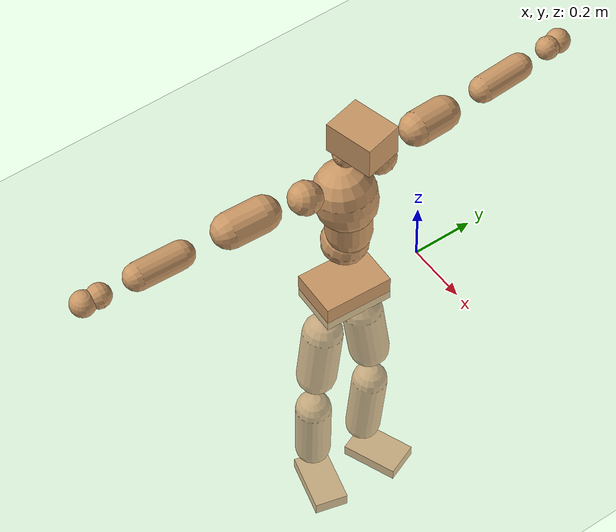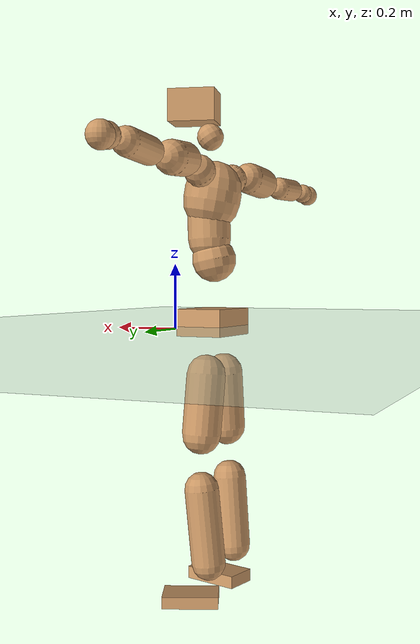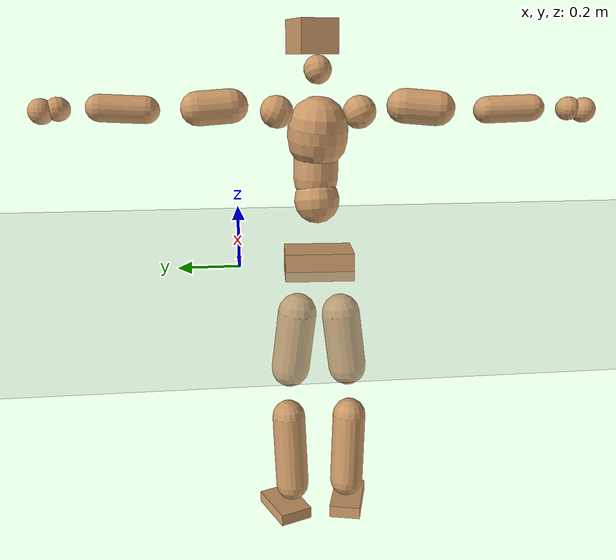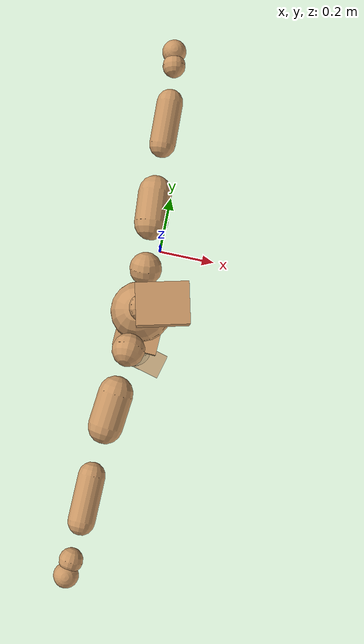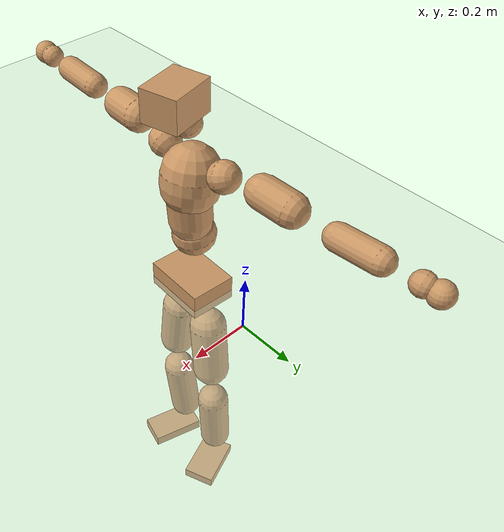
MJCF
<mujoco model="humanoid">
  <compiler coordinate="local" angle="radian"/>
  <default>
    <joint damping="0.0" armature="0.01" stiffness="0.0" limited="true"/>
    <geom conaffinity="1" condim="3" contype="7" margin="0.001" rgba="0.8 0.6 .4 1"/>
  </default>
  <asset>
    <texture type="skybox" builtin="gradient" rgb1=".4 .5 .6" rgb2="0 0 0" width="100" height="100"/>
    <texture builtin="flat" height="1278" mark="cross" markrgb="1 1 1" name="texgeom" random="0.01" rgb1="0.8 0.6 0.4" rgb2="0.8 0.6 0.4" type="cube" width="127"/>
    <texture builtin="checker" height="100" name="texplane" rgb1="0 0 0" rgb2="0.8 0.8 0.8" type="2d" width="100"/>
    <material name="MatPlane" reflectance="0.5" shininess="1" specular="1" texrepeat="60 60" texture="texplane"/>
    <material name="geom" texture="texgeom" texuniform="true"/>
  </asset>
  <worldbody>
    <light cutoff="100" diffuse="1 1 1" dir="-0 0 -1.3" directional="true" exponent="1" pos="0 0 1.3" specular=".1 .1 .1"/>
    <geom conaffinity="1" condim="3" name="floor" pos="0 0 0" rgba="0.8 0.9 0.8 1" size="100 100 .2" type="plane" material="MatPlane"/>
    <body name="Pelvis" pos="-0.0006 -0.2595 0.0194">
      <freejoint name="Pelvis"/>
      <geom type="box" contype="1" conaffinity="1" density="5359.375514" pos="-0.0135 0.0006 -0.0086" size="0.0797 0.1116 0.045" quat="0.9997 0.0000 0.0000 -0.0225" name="Pelvis"/>
      <body name="L_Hip" pos="-0.0233 0.062 -0.085">
        <joint name="L_Hip_x" type="hinge" pos="0 0 0" axis="1 0 0" stiffness="1600" damping="160" armature="0.02" range="-180.0000 180.0000"/>
        <joint name="L_Hip_y" type="hinge" pos="0 0 0" axis="0 1 0" stiffness="1600" damping="160" armature="0.02" range="-180.0000 180.0000"/>
        <joint name="L_Hip_z" type="hinge" pos="0 0 0" axis="0 0 1" stiffness="1600" damping="160" armature="0.02" range="-180.0000 180.0000"/>
        <geom type="capsule" contype="1" conaffinity="1" density="2040.816327" size="0.0643" fromto="0.0031 0.0114 -0.0936 0.0097 0.0359 -0.2945" name="L_Hip"/>
        <body name="L_Knee" pos="0.0128 0.0474 -0.388">
          <joint name="L_Knee_x" type="hinge" pos="0 0 0" axis="1 0 0" stiffness="1600" damping="160" armature="0.02" range="-180.0000 180.0000"/>
          <joint name="L_Knee_y" type="hinge" pos="0 0 0" axis="0 1 0" stiffness="1600" damping="160" armature="0.02" range="-180.0000 180.0000"/>
          <joint name="L_Knee_z" type="hinge" pos="0 0 0" axis="0 0 1" stiffness="1600" damping="160" armature="0.02" range="-180.0000 180.0000"/>
          <geom type="capsule" contype="1" conaffinity="1" density="1234.567901" size="0.0566" fromto="-0.0073 -0.0030 -0.0862 -0.0284 -0.0116 -0.3372" name="L_Knee"/>
          <body name="L_Ankle" pos="-0.0356 -0.0145 -0.4235">
            <joint name="L_Ankle_x" type="hinge" pos="0 0 0" axis="1 0 0" stiffness="1600" damping="160" armature="0.02" range="-180.0000 180.0000"/>
            <joint name="L_Ankle_y" type="hinge" pos="0 0 0" axis="0 1 0" stiffness="1600" damping="160" armature="0.02" range="-180.0000 180.0000"/>
            <joint name="L_Ankle_z" type="hinge" pos="0 0 0" axis="0 0 1" stiffness="1600" damping="160" armature="0.02" range="-180.0000 180.0000"/>
            <geom type="box" contype="1" conaffinity="1" density="999.999962" pos="0.0629 0.0250 -0.0315" size="0.0927 0.0575 0.02" quat="0.9822 0.0000 0.0000 0.1880" name="L_Ankle"/>
            <body name="L_Toe" pos="0.1257 0.05 -0.063">
              <joint name="L_Toe_x" type="hinge" pos="0 0 0" axis="1 0 0" stiffness="1000" damping="100" armature="0.02" range="-180.0000 180.0000"/>
              <joint name="L_Toe_y" type="hinge" pos="0 0 0" axis="0 1 0" stiffness="1000" damping="100" armature="0.02" range="-180.0000 180.0000"/>
              <joint name="L_Toe_z" type="hinge" pos="0 0 0" axis="0 0 1" stiffness="1000" damping="100" armature="0.02" range="-180.0000 180.0000"/>
              <geom type="box" contype="1" conaffinity="1" density="7866032.620227" pos="0.0000 0.0000 0.0318" size="0.0011 0.0027 0.001" quat="0.9814 0.0000 0.0000 0.1920" name="L_Toe"/>
            </body>
          </body>
        </body>
      </body>
      <body name="R_Hip" pos="-0.0215 -0.062 -0.0916">
        <joint name="R_Hip_x" type="hinge" pos="0 0 0" axis="1 0 0" stiffness="1600" damping="160" armature="0.02" range="-180.0000 180.0000"/>
        <joint name="R_Hip_y" type="hinge" pos="0 0 0" axis="0 1 0" stiffness="1600" damping="160" armature="0.02" range="-180.0000 180.0000"/>
        <joint name="R_Hip_z" type="hinge" pos="0 0 0" axis="0 0 1" stiffness="1600" damping="160" armature="0.02" range="-180.0000 180.0000"/>
        <geom type="capsule" contype="1" conaffinity="1" density="2040.816327" size="0.0636" fromto="-0.0003 -0.0114 -0.0929 -0.0008 -0.0351 -0.2872" name="R_Hip"/>
        <body name="R_Knee" pos="-0.001 -0.0464 -0.3801">
          <joint name="R_Knee_x" type="hinge" pos="0 0 0" axis="1 0 0" stiffness="1600" damping="160" armature="0.02" range="-180.0000 180.0000"/>
          <joint name="R_Knee_y" type="hinge" pos="0 0 0" axis="0 1 0" stiffness="1600" damping="160" armature="0.02" range="-180.0000 180.0000"/>
          <joint name="R_Knee_z" type="hinge" pos="0 0 0" axis="0 0 1" stiffness="1600" damping="160" armature="0.02" range="-180.0000 180.0000"/>
          <geom type="capsule" contype="1" conaffinity="1" density="1234.567901" size="0.0572" fromto="-0.0073 0.0039 -0.0868 -0.0276 0.0147 -0.3269" name="R_Knee"/>
          <body name="R_Ankle" pos="-0.0349 0.0187 -0.4137">
            <joint name="R_Ankle_x" type="hinge" pos="0 0 0" axis="1 0 0" stiffness="1600" damping="160" armature="0.02" range="-180.0000 180.0000"/>
            <joint name="R_Ankle_y" type="hinge" pos="0 0 0" axis="0 1 0" stiffness="1600" damping="160" armature="0.02" range="-180.0000 180.0000"/>
            <joint name="R_Ankle_z" type="hinge" pos="0 0 0" axis="0 0 1" stiffness="1600" damping="160" armature="0.02" range="-180.0000 180.0000"/>
            <geom type="box" contype="1" conaffinity="1" density="999.99998" pos="0.0690 -0.0179 -0.0305" size="0.0973 0.0541 0.0213" quat="0.9920 0.0000 0.0000 -0.1264" name="R_Ankle"/>
            <body name="R_Toe" pos="0.1379 -0.0357 -0.0609">
              <joint name="R_Toe_x" type="hinge" pos="0 0 0" axis="1 0 0" stiffness="1000" damping="100" armature="0.02" range="-180.0000 180.0000"/>
              <joint name="R_Toe_y" type="hinge" pos="0 0 0" axis="0 1 0" stiffness="1000" damping="100" armature="0.02" range="-180.0000 180.0000"/>
              <joint name="R_Toe_z" type="hinge" pos="0 0 0" axis="0 0 1" stiffness="1000" damping="100" armature="0.02" range="-180.0000 180.0000"/>
              <geom type="box" contype="1" conaffinity="1" density="8275026.69955" pos="0.0000 0.0000 0.0325" size="0.001 0.0026 0.0012" quat="0.9930 0.0000 0.0000 -0.1180" name="R_Toe"/>
            </body>
          </body>
        </body>
      </body>
      <body name="Torso" pos="-0.0359 0.0037 0.1249">
        <joint name="Torso_x" type="hinge" pos="0 0 0" axis="1 0 0" stiffness="2000" damping="200" armature="0.02" range="-180.0000 180.0000"/>
        <joint name="Torso_y" type="hinge" pos="0 0 0" axis="0 1 0" stiffness="2000" damping="200" armature="0.02" range="-180.0000 180.0000"/>
        <joint name="Torso_z" type="hinge" pos="0 0 0" axis="0 0 1" stiffness="2000" damping="200" armature="0.02" range="-180.0000 180.0000"/>
        <geom type="capsule" contype="1" conaffinity="1" density="2040.816327" size="0.0734" fromto="0.0158 0.0023 0.0740 0.0162 0.0024 0.0760" name="Torso"/>
        <body name="Spine" pos="0.0319 0.0047 0.15">
          <joint name="Spine_x" type="hinge" pos="0 0 0" axis="1 0 0" stiffness="2000" damping="200" armature="0.02" range="-180.0000 180.0000"/>
          <joint name="Spine_y" type="hinge" pos="0 0 0" axis="0 1 0" stiffness="2000" damping="200" armature="0.02" range="-180.0000 180.0000"/>
          <joint name="Spine_z" type="hinge" pos="0 0 0" axis="0 0 1" stiffness="2000" damping="200" armature="0.02" range="-180.0000 180.0000"/>
          <geom type="capsule" contype="1" conaffinity="1" density="2040.816327" size="0.0715" fromto="0.0034 -0.0029 0.0714 -0.0004 0.0004 -0.0091" name="Spine"/>
          <body name="Chest" pos="0.003 -0.0025 0.0623">
            <joint name="Chest_x" type="hinge" pos="0 0 0" axis="1 0 0" stiffness="2000" damping="200" armature="0.02" range="-180.0000 180.0000"/>
            <joint name="Chest_y" type="hinge" pos="0 0 0" axis="0 1 0" stiffness="2000" damping="200" armature="0.02" range="-180.0000 180.0000"/>
            <joint name="Chest_z" type="hinge" pos="0 0 0" axis="0 0 1" stiffness="2000" damping="200" armature="0.02" range="-180.0000 180.0000"/>
            <geom type="capsule" contype="1" conaffinity="1" density="2040.816327" size="0.0958" fromto="-0.0152 -0.0044 0.0945 -0.0090 -0.0026 0.0564" name="Chest"/>
            <body name="Neck" pos="-0.03 -0.0101 0.2202">
              <joint name="Neck_x" type="hinge" pos="0 0 0" axis="1 0 0" stiffness="1000" damping="100" armature="0.02" range="-180.0000 180.0000"/>
              <joint name="Neck_y" type="hinge" pos="0 0 0" axis="0 1 0" stiffness="1000" damping="100" armature="0.02" range="-180.0000 180.0000"/>
              <joint name="Neck_z" type="hinge" pos="0 0 0" axis="0 0 1" stiffness="1000" damping="100" armature="0.02" range="-180.0000 180.0000"/>
              <geom type="capsule" contype="1" conaffinity="1" density="1000" size="0.0438" fromto="0.0255 0.0053 0.0480 0.0265 0.0055 0.0497" name="Neck"/>
              <body name="Head" pos="0.052 0.0109 0.0977">
                <joint name="Head_x" type="hinge" pos="0 0 0" axis="1 0 0" stiffness="1000" damping="100" armature="0.02" range="-180.0000 180.0000"/>
                <joint name="Head_y" type="hinge" pos="0 0 0" axis="0 1 0" stiffness="1000" damping="100" armature="0.02" range="-180.0000 180.0000"/>
                <joint name="Head_z" type="hinge" pos="0 0 0" axis="0 0 1" stiffness="1000" damping="100" armature="0.02" range="-180.0000 180.0000"/>
                <geom type="box" contype="1" conaffinity="1" density="2249.999924" pos="0.0270 0.0064 0.0498" size="0.078 0.0616 0.0529" quat="0.9932 0.0000 0.0000 0.1168" name="Head"/>
              </body>
            </body>
            <body name="L_Thorax" pos="-0.0185 0.0674 0.1178">
              <joint name="L_Thorax_x" type="hinge" pos="0 0 0" axis="1 0 0" stiffness="1000" damping="100" armature="0.02" range="-180.0000 180.0000"/>
              <joint name="L_Thorax_y" type="hinge" pos="0 0 0" axis="0 1 0" stiffness="1000" damping="100" armature="0.02" range="-180.0000 180.0000"/>
              <joint name="L_Thorax_z" type="hinge" pos="0 0 0" axis="0 0 1" stiffness="1000" damping="100" armature="0.02" range="-180.0000 180.0000"/>
              <geom type="capsule" contype="1" conaffinity="1" density="1000" size="0.0511" fromto="-0.0059 0.0574 0.0245 -0.0061 0.0592 0.0253" name="L_Thorax"/>
              <body name="L_Shoulder" pos="-0.012 0.1166 0.0498">
                <joint name="L_Shoulder_x" type="hinge" pos="0 0 0" axis="1 0 0" stiffness="1000" damping="100" armature="0.02" range="-720.0000 720.0000"/>
                <joint name="L_Shoulder_y" type="hinge" pos="0 0 0" axis="0 1 0" stiffness="1000" damping="100" armature="0.02" range="-720.0000 720.0000"/>
                <joint name="L_Shoulder_z" type="hinge" pos="0 0 0" axis="0 0 1" stiffness="1000" damping="100" armature="0.02" range="-720.0000 720.0000"/>
                <geom type="capsule" contype="1" conaffinity="1" density="1000" size="0.0529" fromto="-0.0061 0.0825 -0.0057 -0.0136 0.1827 -0.0126" name="L_Shoulder"/>
                <body name="L_Elbow" pos="-0.0197 0.2651 -0.0183">
                  <joint name="L_Elbow_x" type="hinge" pos="0 0 0" axis="1 0 0" stiffness="1000" damping="100" armature="0.02" range="-720.0000 720.0000"/>
                  <joint name="L_Elbow_y" type="hinge" pos="0 0 0" axis="0 1 0" stiffness="1000" damping="100" armature="0.02" range="-720.0000 720.0000"/>
                  <joint name="L_Elbow_z" type="hinge" pos="0 0 0" axis="0 0 1" stiffness="1000" damping="100" armature="0.02" range="-720.0000 720.0000"/>
                  <geom type="capsule" contype="1" conaffinity="1" density="1000" size="0.0413" fromto="-0.0019 0.0712 0.0036 -0.0056 0.2073 0.0105" name="L_Elbow"/>
                  <body name="L_Wrist" pos="-0.0076 0.2785 0.0141">
                    <joint name="L_Wrist_x" type="hinge" pos="0 0 0" axis="1 0 0" stiffness="600" damping="60" armature="0.02" range="-180.0000 180.0000"/>
                    <joint name="L_Wrist_y" type="hinge" pos="0 0 0" axis="0 1 0" stiffness="600" damping="60" armature="0.02" range="-180.0000 180.0000"/>
                    <joint name="L_Wrist_z" type="hinge" pos="0 0 0" axis="0 0 1" stiffness="600" damping="60" armature="0.02" range="-180.0000 180.0000"/>
                    <geom type="capsule" contype="1" conaffinity="1" density="1000" size="0.0361" fromto="-0.0084 0.0457 -0.0056 -0.0088 0.0477 -0.0058" name="L_Wrist"/>
                    <body name="L_Hand" pos="-0.0172 0.0934 -0.0114">
                      <joint name="L_Hand_x" type="hinge" pos="0 0 0" axis="1 0 0" stiffness="600" damping="60" armature="0.02" range="-180.0000 180.0000"/>
                      <joint name="L_Hand_y" type="hinge" pos="0 0 0" axis="0 1 0" stiffness="600" damping="60" armature="0.02" range="-180.0000 180.0000"/>
                      <joint name="L_Hand_z" type="hinge" pos="0 0 0" axis="0 0 1" stiffness="600" damping="60" armature="0.02" range="-180.0000 180.0000"/>
                      <geom type="sphere" contype="1" conaffinity="1" density="1000" size="0.0381" pos="0.0000 0.0000 0.0000" name="L_Hand"/>
                    </body>
                  </body>
                </body>
              </body>
            </body>
            <body name="R_Thorax" pos="-0.0241 -0.0784 0.1147">
              <joint name="R_Thorax_x" type="hinge" pos="0 0 0" axis="1 0 0" stiffness="1000" damping="100" armature="0.02" range="-180.0000 180.0000"/>
              <joint name="R_Thorax_y" type="hinge" pos="0 0 0" axis="0 1 0" stiffness="1000" damping="100" armature="0.02" range="-180.0000 180.0000"/>
              <joint name="R_Thorax_z" type="hinge" pos="0 0 0" axis="0 0 1" stiffness="1000" damping="100" armature="0.02" range="-180.0000 180.0000"/>
              <geom type="capsule" contype="1" conaffinity="1" density="1000" size="0.0522" fromto="-0.0016 -0.0549 0.0252 -0.0017 -0.0567 0.0260" name="R_Thorax"/>
              <body name="R_Shoulder" pos="-0.0033 -0.1117 0.0512">
                <joint name="R_Shoulder_x" type="hinge" pos="0 0 0" axis="1 0 0" stiffness="1000" damping="100" armature="0.02" range="-720.0000 720.0000"/>
                <joint name="R_Shoulder_y" type="hinge" pos="0 0 0" axis="0 1 0" stiffness="1000" damping="100" armature="0.02" range="-720.0000 720.0000"/>
                <joint name="R_Shoulder_z" type="hinge" pos="0 0 0" axis="0 0 1" stiffness="1000" damping="100" armature="0.02" range="-720.0000 720.0000"/>
                <geom type="capsule" contype="1" conaffinity="1" density="1000" size="0.0548" fromto="-0.0088 -0.0840 -0.0068 -0.0200 -0.1899 -0.0154" name="R_Shoulder"/>
                <body name="R_Elbow" pos="-0.0288 -0.2739 -0.0222">
                  <joint name="R_Elbow_x" type="hinge" pos="0 0 0" axis="1 0 0" stiffness="1000" damping="100" armature="0.02" range="-720.0000 720.0000"/>
                  <joint name="R_Elbow_y" type="hinge" pos="0 0 0" axis="0 1 0" stiffness="1000" damping="100" armature="0.02" range="-720.0000 720.0000"/>
                  <joint name="R_Elbow_z" type="hinge" pos="0 0 0" axis="0 0 1" stiffness="1000" damping="100" armature="0.02" range="-720.0000 720.0000"/>
                  <geom type="capsule" contype="1" conaffinity="1" density="1000" size="0.0422" fromto="-0.0013 -0.0721 0.0025 -0.0038 -0.2147 0.0074" name="R_Elbow"/>
                  <body name="R_Wrist" pos="-0.0051 -0.2868 0.01">
                    <joint name="R_Wrist_x" type="hinge" pos="0 0 0" axis="1 0 0" stiffness="600" damping="60" armature="0.02" range="-180.0000 180.0000"/>
                    <joint name="R_Wrist_y" type="hinge" pos="0 0 0" axis="0 1 0" stiffness="600" damping="60" armature="0.02" range="-180.0000 180.0000"/>
                    <joint name="R_Wrist_z" type="hinge" pos="0 0 0" axis="0 0 1" stiffness="600" damping="60" armature="0.02" range="-180.0000 180.0000"/>
                    <geom type="capsule" contype="1" conaffinity="1" density="1000" size="0.0373" fromto="-0.0056 -0.0475 -0.0046 -0.0058 -0.0495 -0.0048" name="R_Wrist"/>
                    <body name="R_Hand" pos="-0.0114 -0.0969 -0.0094">
                      <joint name="R_Hand_x" type="hinge" pos="0 0 0" axis="1 0 0" stiffness="600" damping="60" armature="0.02" range="-180.0000 180.0000"/>
                      <joint name="R_Hand_y" type="hinge" pos="0 0 0" axis="0 1 0" stiffness="600" damping="60" armature="0.02" range="-180.0000 180.0000"/>
                      <joint name="R_Hand_z" type="hinge" pos="0 0 0" axis="0 0 1" stiffness="600" damping="60" armature="0.02" range="-180.0000 180.0000"/>
                      <geom type="sphere" contype="1" conaffinity="1" density="1000" size="0.0392" pos="0.0000 0.0000 0.0000" name="R_Hand"/>
                    </body>
                  </body>
                </body>
              </body>
            </body>
          </body>
        </body>
      </body>
    </body>
  </worldbody>
  <actuator>
    <motor name="L_Hip_x" joint="L_Hip_x" gear="500"/>
    <motor name="L_Hip_y" joint="L_Hip_y" gear="500"/>
    <motor name="L_Hip_z" joint="L_Hip_z" gear="500"/>
    <motor name="L_Knee_x" joint="L_Knee_x" gear="500"/>
    <motor name="L_Knee_y" joint="L_Knee_y" gear="500"/>
    <motor name="L_Knee_z" joint="L_Knee_z" gear="500"/>
    <motor name="L_Ankle_x" joint="L_Ankle_x" gear="500"/>
    <motor name="L_Ankle_y" joint="L_Ankle_y" gear="500"/>
    <motor name="L_Ankle_z" joint="L_Ankle_z" gear="500"/>
    <motor name="L_Toe_x" joint="L_Toe_x" gear="500"/>
    <motor name="L_Toe_y" joint="L_Toe_y" gear="500"/>
    <motor name="L_Toe_z" joint="L_Toe_z" gear="500"/>
    <motor name="R_Hip_x" joint="R_Hip_x" gear="500"/>
    <motor name="R_Hip_y" joint="R_Hip_y" gear="500"/>
    <motor name="R_Hip_z" joint="R_Hip_z" gear="500"/>
    <motor name="R_Knee_x" joint="R_Knee_x" gear="500"/>
    <motor name="R_Knee_y" joint="R_Knee_y" gear="500"/>
    <motor name="R_Knee_z" joint="R_Knee_z" gear="500"/>
    <motor name="R_Ankle_x" joint="R_Ankle_x" gear="500"/>
    <motor name="R_Ankle_y" joint="R_Ankle_y" gear="500"/>
    <motor name="R_Ankle_z" joint="R_Ankle_z" gear="500"/>
    <motor name="R_Toe_x" joint="R_Toe_x" gear="500"/>
    <motor name="R_Toe_y" joint="R_Toe_y" gear="500"/>
    <motor name="R_Toe_z" joint="R_Toe_z" gear="500"/>
    <motor name="Torso_x" joint="Torso_x" gear="500"/>
    <motor name="Torso_y" joint="Torso_y" gear="500"/>
    <motor name="Torso_z" joint="Torso_z" gear="500"/>
    <motor name="Spine_x" joint="Spine_x" gear="500"/>
    <motor name="Spine_y" joint="Spine_y" gear="500"/>
    <motor name="Spine_z" joint="Spine_z" gear="500"/>
    <motor name="Chest_x" joint="Chest_x" gear="500"/>
    <motor name="Chest_y" joint="Chest_y" gear="500"/>
    <motor name="Chest_z" joint="Chest_z" gear="500"/>
    <motor name="Neck_x" joint="Neck_x" gear="500"/>
    <motor name="Neck_y" joint="Neck_y" gear="500"/>
    <motor name="Neck_z" joint="Neck_z" gear="500"/>
    <motor name="Head_x" joint="Head_x" gear="500"/>
    <motor name="Head_y" joint="Head_y" gear="500"/>
    <motor name="Head_z" joint="Head_z" gear="500"/>
    <motor name="L_Thorax_x" joint="L_Thorax_x" gear="500"/>
    <motor name="L_Thorax_y" joint="L_Thorax_y" gear="500"/>
    <motor name="L_Thorax_z" joint="L_Thorax_z" gear="500"/>
    <motor name="L_Shoulder_x" joint="L_Shoulder_x" gear="500"/>
    <motor name="L_Shoulder_y" joint="L_Shoulder_y" gear="500"/>
    <motor name="L_Shoulder_z" joint="L_Shoulder_z" gear="500"/>
    <motor name="L_Elbow_x" joint="L_Elbow_x" gear="500"/>
    <motor name="L_Elbow_y" joint="L_Elbow_y" gear="500"/>
    <motor name="L_Elbow_z" joint="L_Elbow_z" gear="500"/>
    <motor name="L_Wrist_x" joint="L_Wrist_x" gear="500"/>
    <motor name="L_Wrist_y" joint="L_Wrist_y" gear="500"/>
    <motor name="L_Wrist_z" joint="L_Wrist_z" gear="500"/>
    <motor name="L_Hand_x" joint="L_Hand_x" gear="500"/>
    <motor name="L_Hand_y" joint="L_Hand_y" gear="500"/>
    <motor name="L_Hand_z" joint="L_Hand_z" gear="500"/>
    <motor name="R_Thorax_x" joint="R_Thorax_x" gear="500"/>
    <motor name="R_Thorax_y" joint="R_Thorax_y" gear="500"/>
    <motor name="R_Thorax_z" joint="R_Thorax_z" gear="500"/>
    <motor name="R_Shoulder_x" joint="R_Shoulder_x" gear="500"/>
    <motor name="R_Shoulder_y" joint="R_Shoulder_y" gear="500"/>
    <motor name="R_Shoulder_z" joint="R_Shoulder_z" gear="500"/>
    <motor name="R_Elbow_x" joint="R_Elbow_x" gear="500"/>
    <motor name="R_Elbow_y" joint="R_Elbow_y" gear="500"/>
    <motor name="R_Elbow_z" joint="R_Elbow_z" gear="500"/>
    <motor name="R_Wrist_x" joint="R_Wrist_x" gear="500"/>
    <motor name="R_Wrist_y" joint="R_Wrist_y" gear="500"/>
    <motor name="R_Wrist_z" joint="R_Wrist_z" gear="500"/>
    <motor name="R_Hand_x" joint="R_Hand_x" gear="500"/>
    <motor name="R_Hand_y" joint="R_Hand_y" gear="500"/>
    <motor name="R_Hand_z" joint="R_Hand_z" gear="500"/>
  </actuator>
  <contact>
    <exclude body1="Torso" body2="Chest"/>
    <exclude body1="Head" body2="Chest"/>
    <exclude body1="R_Knee" body2="R_Toe"/>
    <exclude body1="R_Knee" body2="L_Ankle"/>
    <exclude body1="R_Knee" body2="L_Toe"/>
    <exclude body1="L_Knee" body2="L_Toe"/>
    <exclude body1="L_Knee" body2="R_Ankle"/>
    <exclude body1="L_Knee" body2="R_Toe"/>
    <exclude body1="L_Shoulder" body2="Chest"/>
    <exclude body1="R_Shoulder" body2="Chest"/>
  </contact>
  <sensor/>
  <size njmax="700" nconmax="700"/>
</mujoco>
